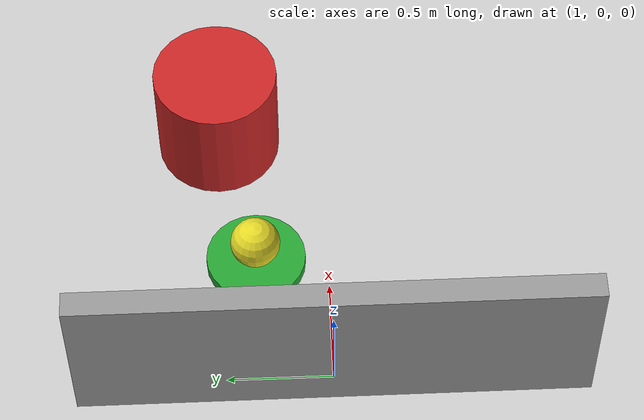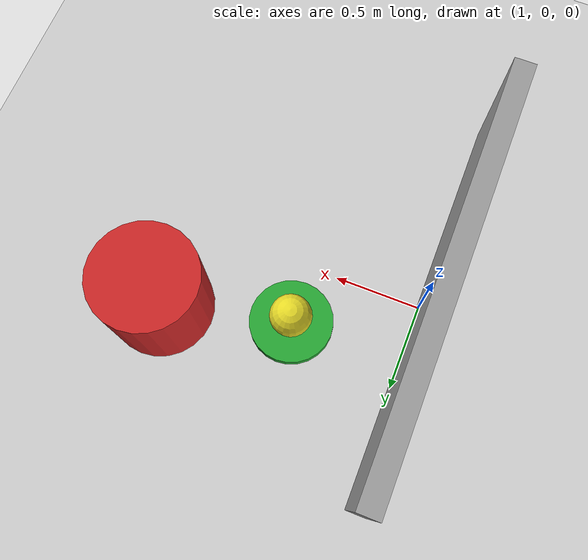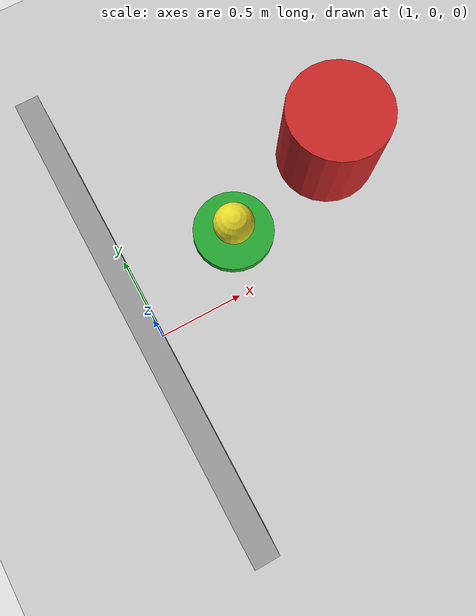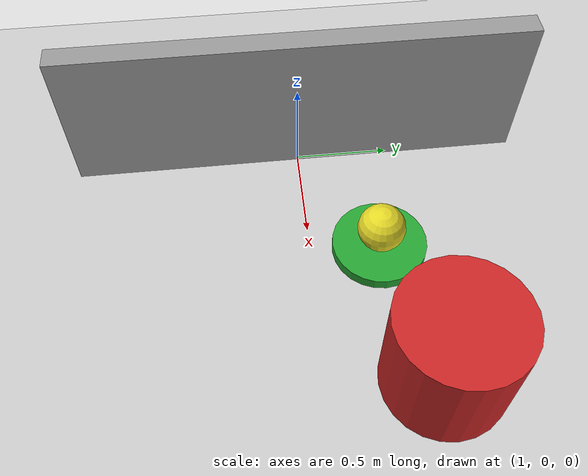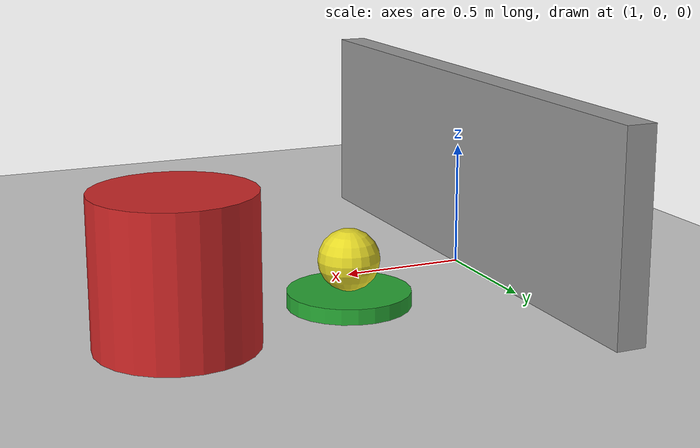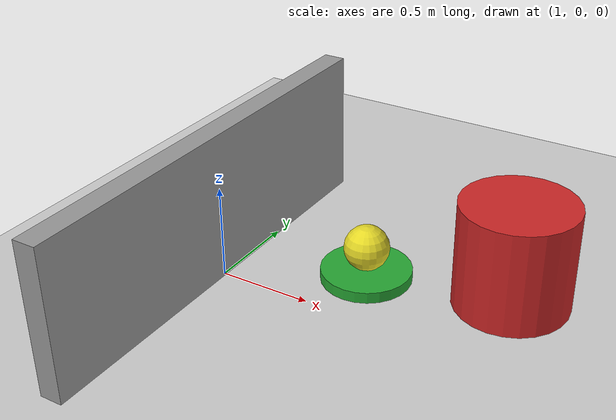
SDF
<sdf version='1.7'>
  <world name='blind_wall_static_world'>
    <gravity>0 0 -9.8</gravity>
    <magnetic_field>6e-06 2.3e-05 -4.2e-05</magnetic_field>
    <atmosphere type='adiabatic'/>
    <physics name='default_physics' default='1' type='ode'>
      <max_step_size>0.001</max_step_size>
      <real_time_factor>1</real_time_factor>
      <real_time_update_rate>1000</real_time_update_rate>
    </physics>
    <scene>
      <ambient>0.4 0.4 0.4 1</ambient>
      <background>0.8 0.8 0.8 1</background>
      <shadows>1</shadows>
    </scene>
    <include>
      <uri>model://sun</uri>
    </include>
    <include>
      <uri>model://ground_plane</uri>
    </include>

    <model name='occlusion_wall'>
      <static>true</static>
      <pose>0.95 0.00 0.40 0 0 0</pose>
      <link name='link'>
        <collision name='collision'>
          <geometry>
            <box>
              <size>0.12 2.40 0.80</size>
            </box>
          </geometry>
        </collision>
        <visual name='visual'>
          <geometry>
            <box>
              <size>0.12 2.40 0.80</size>
            </box>
          </geometry>
          <material>
            <script>
              <name>Gazebo/Grey</name>
              <uri>file://media/materials/scripts/gazebo.material</uri>
            </script>
          </material>
        </visual>
      </link>
    </model>

    <model name='hidden_static_cylinder'>
      <static>true</static>
      <pose>2.38 0.52 0.28 0 0 0</pose>
      <link name='link'>
        <collision name='collision'>
          <geometry>
            <cylinder>
              <radius>0.30</radius>
              <length>0.56</length>
            </cylinder>
          </geometry>
        </collision>
        <visual name='visual'>
          <geometry>
            <cylinder>
              <radius>0.30</radius>
              <length>0.56</length>
            </cylinder>
          </geometry>
          <material>
            <script>
              <name>Gazebo/RedBright</name>
              <uri>file://media/materials/scripts/gazebo.material</uri>
            </script>
          </material>
        </visual>
      </link>
    </model>

    <model name='goal_visual_marker'>
      <static>true</static>
      <pose>1.65 0.35 0.00 0 0 0</pose>
      <link name='link'>
        <visual name='goal_disc'>
          <pose>0 0 0.03 0 0 0</pose>
          <geometry>
            <cylinder>
              <radius>0.24</radius>
              <length>0.06</length>
            </cylinder>
          </geometry>
          <material>
            <script>
              <name>Gazebo/Green</name>
              <uri>file://media/materials/scripts/gazebo.material</uri>
            </script>
            <ambient>0.10 0.90 0.25 0.85</ambient>
            <diffuse>0.10 0.90 0.25 0.85</diffuse>
          </material>
        </visual>
        <visual name='goal_sphere'>
          <pose>0 0 0.18 0 0 0</pose>
          <geometry>
            <sphere>
              <radius>0.12</radius>
            </sphere>
          </geometry>
          <material>
            <script>
              <name>Gazebo/Yellow</name>
              <uri>file://media/materials/scripts/gazebo.material</uri>
            </script>
            <ambient>1.0 0.85 0.10 0.95</ambient>
            <diffuse>1.0 0.85 0.10 0.95</diffuse>
          </material>
        </visual>
      </link>
    </model>
  </world>
</sdf>
